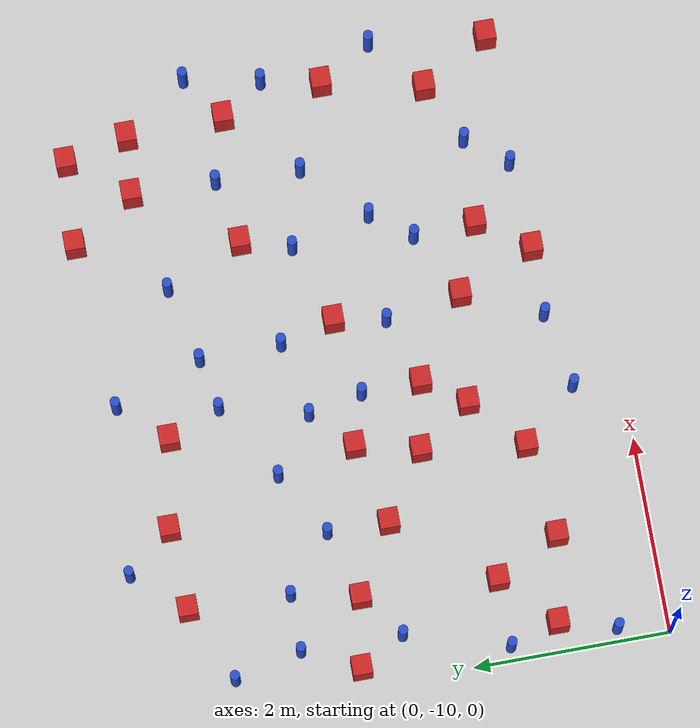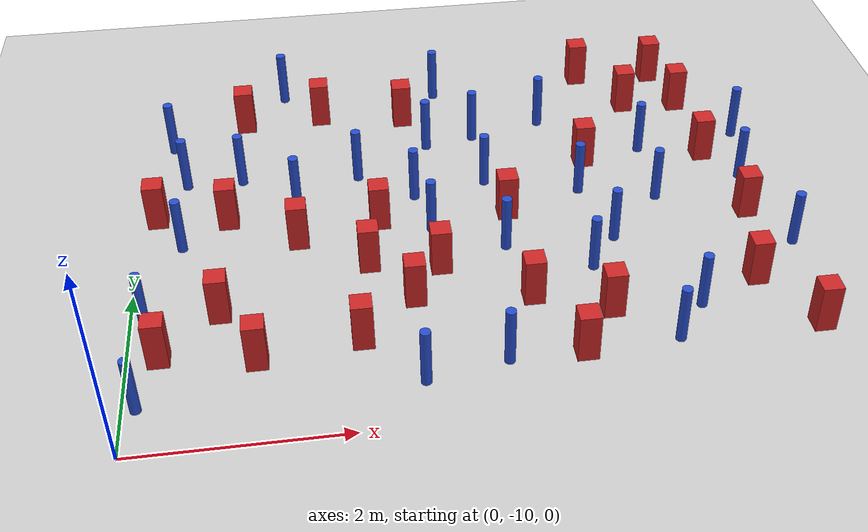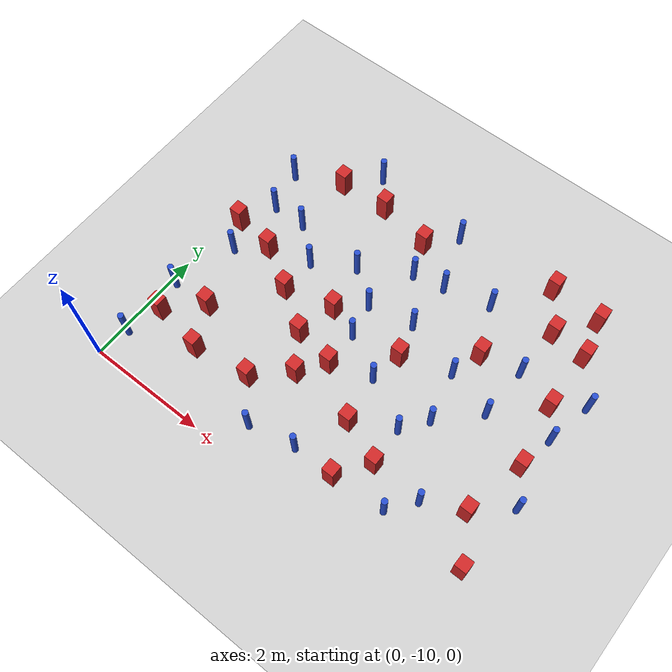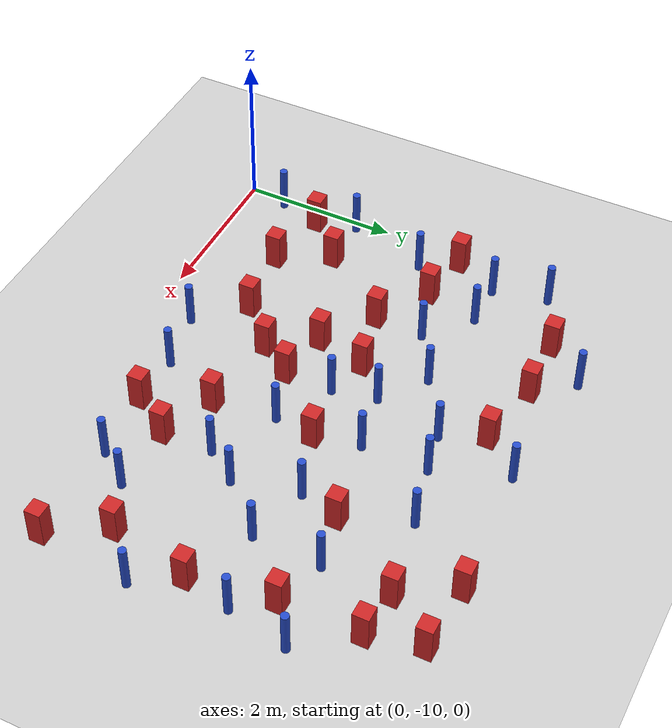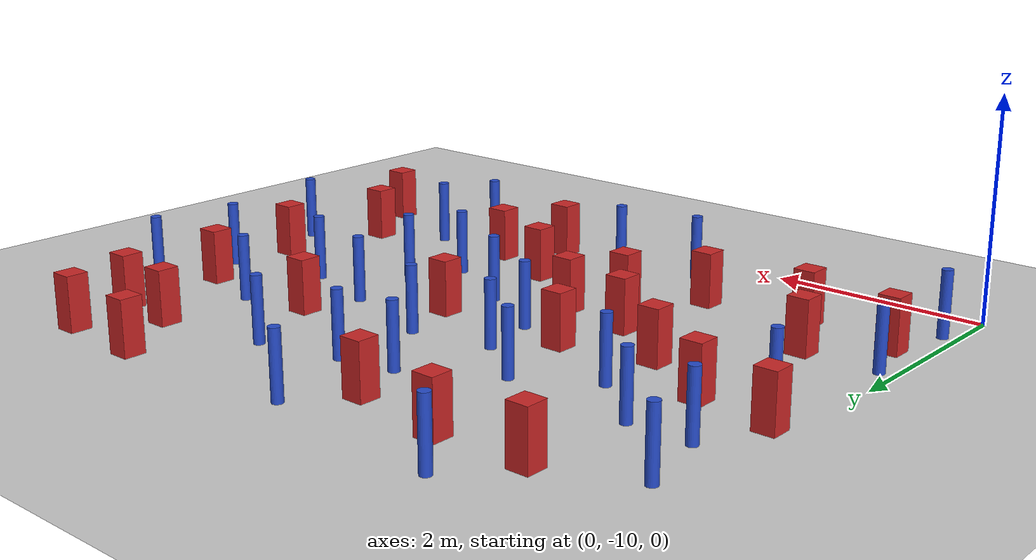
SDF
<sdf version="1.6">
 <world name="default">
  <model name="ground_plane">
   <static>1</static>
   <link name="link">
    <collision name="collision">
     <geometry><plane><normal>0 0 1</normal><size>100 100</size></plane></geometry>
     <surface><friction><ode><mu>100</mu><mu2>50</mu2></ode></friction></surface>
    </collision>
    <visual name="visual">
     <cast_shadows>0</cast_shadows>
     <geometry><plane><normal>0 0 1</normal><size>100 100</size></plane></geometry>
     <material>
      <ambient>1.0 1.0 1.0 1.0</ambient>
      <diffuse>0.8 0.8 0.8 1.0</diffuse>
      <specular>0.01 0.01 0.01 1.000000</specular>
     </material>
    </visual>
   </link>
  </model>
  <model name="pole_obstacle6">
   <static>true</static>
   <pose>5.271577572 -7.18126744558 7.38925637345e-09 -8.47170692796e-08 1.24976764786e-08 -1.74513093032e-07</pose>
   <link name="link">
    <pose>0 0 0.3 0 -0 0</pose>
    <inertial>
     <mass>1</mass>
     <inertia><ixx>0.145833</ixx><ixy>0</ixy><ixz>0</ixz><iyy>0.145833</iyy><iyz>0</iyz><izz>0.125</izz></inertia>
    </inertial>
    <collision name="collision">
     <geometry><cylinder><radius>0.05</radius><length>.6</length></cylinder></geometry>
    </collision>
    <visual name="visual">
     <geometry><cylinder><radius>0.05</radius><length>.6</length></cylinder></geometry>
     <material>
      <script><name>Gazebo/Blue</name><uri>file://media/materials/scripts/gazebo.material</uri></script>
     </material>
    </visual>
   </link>
  </model>
  <model name="pole_obstacle7">
   <static>true</static>
   <pose>5.28432317907 -8.86306961432 7.38925637345e-09 -8.471706928e-08 1.24976765081e-08 -1.74513093015e-07</pose>
   <link name="link">
    <pose>0 0 0.3 0 -0 0</pose>
    <inertial>
     <mass>1</mass>
     <inertia><ixx>0.145833</ixx><ixy>0</ixy><ixz>0</ixz><iyy>0.145833</iyy><iyz>0</iyz><izz>0.125</izz></inertia>
    </inertial>
    <collision name="collision">
     <geometry><cylinder><radius>0.05</radius><length>.6</length></cylinder></geometry>
    </collision>
    <visual name="visual">
     <geometry><cylinder><radius>0.05</radius><length>.6</length></cylinder></geometry>
     <material>
      <script><name>Gazebo/Blue</name><uri>file://media/materials/scripts/gazebo.material</uri></script>
     </material>
    </visual>
   </link>
  </model>
  <model name="pole_obstacle8">
   <static>true</static>
   <pose>3.60438439242 -7.76545788846 7.38925637345e-09 -8.47170692798e-08 1.24976765033e-08 -1.74513093019e-07</pose>
   <link name="link">
    <pose>0 0 0.3 0 -0 0</pose>
    <inertial>
     <mass>1</mass>
     <inertia><ixx>0.145833</ixx><ixy>0</ixy><ixz>0</ixz><iyy>0.145833</iyy><iyz>0</iyz><izz>0.125</izz></inertia>
    </inertial>
    <collision name="collision">
     <geometry><cylinder><radius>0.05</radius><length>.6</length></cylinder></geometry>
    </collision>
    <visual name="visual">
     <geometry><cylinder><radius>0.05</radius><length>.6</length></cylinder></geometry>
     <material>
      <script><name>Gazebo/Blue</name><uri>file://media/materials/scripts/gazebo.material</uri></script>
     </material>
    </visual>
   </link>
  </model>
  <model name="pole_obstacle11">
   <static>true</static>
   <pose>5.30130845704 -6.31877070383 7.38925637345e-09 -8.47170692796e-08 1.24976764786e-08 -1.74513093032e-07</pose>
   <link name="link">
    <pose>0 0 0.3 0 -0 0</pose>
    <inertial>
     <mass>1</mass>
     <inertia><ixx>0.145833</ixx><ixy>0</ixy><ixz>0</ixz><iyy>0.145833</iyy><iyz>0</iyz><izz>0.125</izz></inertia>
    </inertial>
    <collision name="collision">
     <geometry><cylinder><radius>0.05</radius><length>.6</length></cylinder></geometry>
    </collision>
    <visual name="visual">
     <geometry><cylinder><radius>0.05</radius><length>.6</length></cylinder></geometry>
     <material>
      <script><name>Gazebo/Blue</name><uri>file://media/materials/scripts/gazebo.material</uri></script>
     </material>
    </visual>
   </link>
  </model>
  <model name="square_post_obstacle25">
   <static>true</static>
   <pose>6.12115237514 -7.54366766233 1.91545236811e-07 -7.35059704564e-06 1.12565212e-07 2.39332434364e-05</pose>
   <link name="link">
    <pose>0 0 0.25 0 -0 0</pose>
    <inertial>
     <mass>100</mass>
     <inertia>
      <ixx>0.166667</ixx>
      <ixy>0</ixy>
      <ixz>0</ixz>
      <iyy>0.166667</iyy>
      <iyz>0</iyz>
      <izz>0.166667</izz>
     </inertia>
    </inertial>
    <collision name="collision"><geometry><box><size>.2 .2 .5</size></box></geometry></collision>
    <visual name="visual">
     <geometry><box><size>.2 .2 .5</size></box></geometry>
     <material>
      <script><name>Gazebo/Red</name><uri>file://media/materials/scripts/gazebo.material</uri></script>
     </material>
    </visual>
   </link>
  </model>
  <model name="square_post_obstacle27">
   <static>true</static>
   <pose>3.73613337438 -8.54263204366 1.91545236811e-07 -7.35059704564e-06 1.12565212e-07 2.39332434364e-05</pose>
   <link name="link">
    <pose>0 0 0.25 0 -0 0</pose>
    <inertial>
     <mass>100</mass>
     <inertia>
      <ixx>0.166667</ixx>
      <ixy>0</ixy>
      <ixz>0</ixz>
      <iyy>0.166667</iyy>
      <iyz>0</iyz>
      <izz>0.166667</izz>
     </inertia>
    </inertial>
    <collision name="collision"><geometry><box><size>.2 .2 .5</size></box></geometry></collision>
    <visual name="visual">
     <geometry><box><size>.2 .2 .5</size></box></geometry>
     <material>
      <script><name>Gazebo/Red</name><uri>file://media/materials/scripts/gazebo.material</uri></script>
     </material>
    </visual>
   </link>
  </model>
  <model name="pole_obstacle23">
   <static>true</static>
   <pose>4.396055112 -8.18923152919 7.38925637345e-09 -8.471706928e-08 1.24976765081e-08 -1.74513093015e-07</pose>
   <link name="link">
    <pose>0 0 0.3 0 -0 0</pose>
    <inertial>
     <mass>1</mass>
     <inertia><ixx>0.145833</ixx><ixy>0</ixy><ixz>0</ixz><iyy>0.145833</iyy><iyz>0</iyz><izz>0.125</izz></inertia>
    </inertial>
    <collision name="collision">
     <geometry><cylinder><radius>0.05</radius><length>.6</length></cylinder></geometry>
    </collision>
    <visual name="visual">
     <geometry><cylinder><radius>0.05</radius><length>.6</length></cylinder></geometry>
     <material>
      <script><name>Gazebo/Blue</name><uri>file://media/materials/scripts/gazebo.material</uri></script>
     </material>
    </visual>
   </link>
  </model>
  <model name="pole_obstacle30">
   <static>true</static>
   <pose>0.287188751071 -5.63459459776 7.38925637345e-09 -8.47170692799e-08 1.24976765101e-08 -1.74513093014e-07</pose>
   <link name="link">
    <pose>0 0 0.3 0 -0 0</pose>
    <inertial>
     <mass>1</mass>
     <inertia><ixx>0.145833</ixx><ixy>0</ixy><ixz>0</ixz><iyy>0.145833</iyy><iyz>0</iyz><izz>0.125</izz></inertia>
    </inertial>
    <collision name="collision">
     <geometry><cylinder><radius>0.05</radius><length>.6</length></cylinder></geometry>
    </collision>
    <visual name="visual">
     <geometry><cylinder><radius>0.05</radius><length>.6</length></cylinder></geometry>
     <material>
      <script><name>Gazebo/Blue</name><uri>file://media/materials/scripts/gazebo.material</uri></script>
     </material>
    </visual>
   </link>
  </model>
  <model name="square_post_obstacle39">
   <static>true</static>
   <pose>3.69837283234 -7.23739960545 1.91545236811e-07 -7.35059704564e-06 1.12565212e-07 2.39332434364e-05</pose>
   <link name="link">
    <pose>0 0 0.25 0 -0 0</pose>
    <inertial>
     <mass>100</mass>
     <inertia>
      <ixx>0.166667</ixx>
      <ixy>0</ixy>
      <ixz>0</ixz>
      <iyy>0.166667</iyy>
      <iyz>0</iyz>
      <izz>0.166667</izz>
     </inertia>
    </inertial>
    <collision name="collision"><geometry><box><size>.2 .2 .5</size></box></geometry></collision>
    <visual name="visual">
     <geometry><box><size>.2 .2 .5</size></box></geometry>
     <material>
      <script><name>Gazebo/Red</name><uri>file://media/materials/scripts/gazebo.material</uri></script>
     </material>
    </visual>
   </link>
  </model>
  <model name="pole_obstacle39">
   <static>true</static>
   <pose>2.23566454132 -6.41571972906 7.38925637345e-09 -8.47170692798e-08 1.24976765033e-08 -1.74513093019e-07</pose>
   <link name="link">
    <pose>0 0 0.3 0 -0 0</pose>
    <inertial>
     <mass>1</mass>
     <inertia><ixx>0.145833</ixx><ixy>0</ixy><ixz>0</ixz><iyy>0.145833</iyy><iyz>0</iyz><izz>0.125</izz></inertia>
    </inertial>
    <collision name="collision">
     <geometry><cylinder><radius>0.05</radius><length>.6</length></cylinder></geometry>
    </collision>
    <visual name="visual">
     <geometry><cylinder><radius>0.05</radius><length>.6</length></cylinder></geometry>
     <material>
      <script><name>Gazebo/Blue</name><uri>file://media/materials/scripts/gazebo.material</uri></script>
     </material>
    </visual>
   </link>
  </model>
  <model name="square_post_obstacle40">
   <static>true</static>
   <pose>2.92845621348 -7.99099656121 1.91545236811e-07 -7.35059704564e-06 1.12565212e-07 2.39332434364e-05</pose>
   <link name="link">
    <pose>0 0 0.25 0 -0 0</pose>
    <inertial>
     <mass>100</mass>
     <inertia>
      <ixx>0.166667</ixx>
      <ixy>0</ixy>
      <ixz>0</ixz>
      <iyy>0.166667</iyy>
      <iyz>0</iyz>
      <izz>0.166667</izz>
     </inertia>
    </inertial>
    <collision name="collision"><geometry><box><size>.2 .2 .5</size></box></geometry></collision>
    <visual name="visual">
     <geometry><box><size>.2 .2 .5</size></box></geometry>
     <material>
      <script><name>Gazebo/Red</name><uri>file://media/materials/scripts/gazebo.material</uri></script>
     </material>
    </visual>
   </link>
  </model>
  <model name="pole_obstacle45">
   <static>true</static>
   <pose>1.0246326192 -6.3255468226 7.38925637345e-09 -8.47170692799e-08 1.24976765021e-08 -1.74513093019e-07</pose>
   <link name="link">
    <pose>0 0 0.3 0 -0 0</pose>
    <inertial>
     <mass>1</mass>
     <inertia><ixx>0.145833</ixx><ixy>0</ixy><ixz>0</ixz><iyy>0.145833</iyy><iyz>0</iyz><izz>0.125</izz></inertia>
    </inertial>
    <collision name="collision">
     <geometry><cylinder><radius>0.05</radius><length>.6</length></cylinder></geometry>
    </collision>
    <visual name="visual">
     <geometry><cylinder><radius>0.05</radius><length>.6</length></cylinder></geometry>
     <material>
      <script><name>Gazebo/Blue</name><uri>file://media/materials/scripts/gazebo.material</uri></script>
     </material>
    </visual>
   </link>
  </model>
  <model name="square_post_obstacle49">
   <static>true</static>
   <pose>0.822235877678 -8.39169354705 1.91545236811e-07 -7.35059704564e-06 1.12565212e-07 2.39332434364e-05</pose>
   <link name="link">
    <pose>0 0 0.25 0 -0 0</pose>
    <inertial>
     <mass>100</mass>
     <inertia>
      <ixx>0.166667</ixx>
      <ixy>0</ixy>
      <ixz>0</ixz>
      <iyy>0.166667</iyy>
      <iyz>0</iyz>
      <izz>0.166667</izz>
     </inertia>
    </inertial>
    <collision name="collision"><geometry><box><size>.2 .2 .5</size></box></geometry></collision>
    <visual name="visual">
     <geometry><box><size>.2 .2 .5</size></box></geometry>
     <material>
      <script><name>Gazebo/Red</name><uri>file://media/materials/scripts/gazebo.material</uri></script>
     </material>
    </visual>
   </link>
  </model>
  <model name="square_post_obstacle68">
   <static>true</static>
   <pose>5.91834453079 -5.51161817568 1.91545236811e-07 -7.35059704564e-06 1.12565212e-07 2.39332434364e-05</pose>
   <link name="link">
    <pose>0 0 0.25 0 -0 0</pose>
    <inertial>
     <mass>100</mass>
     <inertia>
      <ixx>0.166667</ixx>
      <ixy>0</ixy>
      <ixz>0</ixz>
      <iyy>0.166667</iyy>
      <iyz>0</iyz>
      <izz>0.166667</izz>
     </inertia>
    </inertial>
    <collision name="collision"><geometry><box><size>.2 .2 .5</size></box></geometry></collision>
    <visual name="visual">
     <geometry><box><size>.2 .2 .5</size></box></geometry>
     <material>
      <script><name>Gazebo/Red</name><uri>file://media/materials/scripts/gazebo.material</uri></script>
     </material>
    </visual>
   </link>
  </model>
  <model name="square_post_obstacle71">
   <static>true</static>
   <pose>4.07482808554 -9.33600447289 1.91545236811e-07 -7.35059704564e-06 1.12565212e-07 2.39332434364e-05</pose>
   <link name="link">
    <pose>0 0 0.25 0 -0 0</pose>
    <inertial>
     <mass>100</mass>
     <inertia>
      <ixx>0.166667</ixx>
      <ixy>0</ixy>
      <ixz>0</ixz>
      <iyy>0.166667</iyy>
      <iyz>0</iyz>
      <izz>0.166667</izz>
     </inertia>
    </inertial>
    <collision name="collision"><geometry><box><size>.2 .2 .5</size></box></geometry></collision>
    <visual name="visual">
     <geometry><box><size>.2 .2 .5</size></box></geometry>
     <material>
      <script><name>Gazebo/Red</name><uri>file://media/materials/scripts/gazebo.material</uri></script>
     </material>
    </visual>
   </link>
  </model>
  <model name="square_post_obstacle72">
   <static>true</static>
   <pose>1.57845472232 -7.42031541721 1.91545236811e-07 -7.35059704564e-06 1.12565212e-07 2.39332434364e-05</pose>
   <link name="link">
    <pose>0 0 0.25 0 -0 0</pose>
    <inertial>
     <mass>100</mass>
     <inertia>
      <ixx>0.166667</ixx>
      <ixy>0</ixy>
      <ixz>0</ixz>
      <iyy>0.166667</iyy>
      <iyz>0</iyz>
      <izz>0.166667</izz>
     </inertia>
    </inertial>
    <collision name="collision"><geometry><box><size>.2 .2 .5</size></box></geometry></collision>
    <visual name="visual">
     <geometry><box><size>.2 .2 .5</size></box></geometry>
     <material>
      <script><name>Gazebo/Red</name><uri>file://media/materials/scripts/gazebo.material</uri></script>
     </material>
    </visual>
   </link>
  </model>
  <model name="pole_obstacle72">
   <static>true</static>
   <pose>0.451966054283 -6.32742800341 7.38925637345e-09 -8.471706928e-08 1.24976765095e-08 -1.74513093014e-07</pose>
   <link name="link">
    <pose>0 0 0.3 0 -0 0</pose>
    <inertial>
     <mass>1</mass>
     <inertia><ixx>0.145833</ixx><ixy>0</ixy><ixz>0</ixz><iyy>0.145833</iyy><iyz>0</iyz><izz>0.125</izz></inertia>
    </inertial>
    <collision name="collision">
     <geometry><cylinder><radius>0.05</radius><length>.6</length></cylinder></geometry>
    </collision>
    <visual name="visual">
     <geometry><cylinder><radius>0.05</radius><length>.6</length></cylinder></geometry>
     <material>
      <script><name>Gazebo/Blue</name><uri>file://media/materials/scripts/gazebo.material</uri></script>
     </material>
    </visual>
   </link>
  </model>
  <model name="pole_obstacle78">
   <static>true</static>
   <pose>0.123281233815 -9.48123394216 7.38925637345e-09 -8.47170692796e-08 1.24976764716e-08 -1.74513093036e-07</pose>
   <link name="link">
    <pose>0 0 0.3 0 -0 0</pose>
    <inertial>
     <mass>1</mass>
     <inertia><ixx>0.145833</ixx><ixy>0</ixy><ixz>0</ixz><iyy>0.145833</iyy><iyz>0</iyz><izz>0.125</izz></inertia>
    </inertial>
    <collision name="collision">
     <geometry><cylinder><radius>0.05</radius><length>.6</length></cylinder></geometry>
    </collision>
    <visual name="visual">
     <geometry><cylinder><radius>0.05</radius><length>.6</length></cylinder></geometry>
     <material>
      <script><name>Gazebo/Blue</name><uri>file://media/materials/scripts/gazebo.material</uri></script>
     </material>
    </visual>
   </link>
  </model>
  <model name="square_post_obstacle77">
   <static>true</static>
   <pose>1.06914632745 -5.2887899523 1.91545236811e-07 -7.35059704564e-06 1.12565212e-07 2.39332434364e-05</pose>
   <link name="link">
    <pose>0 0 0.25 0 -0 0</pose>
    <inertial>
     <mass>100</mass>
     <inertia>
      <ixx>0.166667</ixx>
      <ixy>0</ixy>
      <ixz>0</ixz>
      <iyy>0.166667</iyy>
      <iyz>0</iyz>
      <izz>0.166667</izz>
     </inertia>
    </inertial>
    <collision name="collision"><geometry><box><size>.2 .2 .5</size></box></geometry></collision>
    <visual name="visual">
     <geometry><box><size>.2 .2 .5</size></box></geometry>
     <material>
      <script><name>Gazebo/Red</name><uri>file://media/materials/scripts/gazebo.material</uri></script>
     </material>
    </visual>
   </link>
  </model>
  <model name="pole_obstacle87">
   <static>true</static>
   <pose>4.30091227438 -5.65479404356 7.38925637345e-09 -8.47170692796e-08 1.24976764786e-08 -1.74513093032e-07</pose>
   <link name="link">
    <pose>0 0 0.3 0 -0 0</pose>
    <inertial>
     <mass>1</mass>
     <inertia><ixx>0.145833</ixx><ixy>0</ixy><ixz>0</ixz><iyy>0.145833</iyy><iyz>0</iyz><izz>0.125</izz></inertia>
    </inertial>
    <collision name="collision">
     <geometry><cylinder><radius>0.05</radius><length>.6</length></cylinder></geometry>
    </collision>
    <visual name="visual">
     <geometry><cylinder><radius>0.05</radius><length>.6</length></cylinder></geometry>
     <material>
      <script><name>Gazebo/Blue</name><uri>file://media/materials/scripts/gazebo.material</uri></script>
     </material>
    </visual>
   </link>
  </model>
  <model name="pole_obstacle91">
   <static>true</static>
   <pose>4.49982077627 -6.96311175819 7.38925637345e-09 -8.47170692796e-08 1.24976764786e-08 -1.74513093032e-07</pose>
   <link name="link">
    <pose>0 0 0.3 0 -0 0</pose>
    <inertial>
     <mass>1</mass>
     <inertia><ixx>0.145833</ixx><ixy>0</ixy><ixz>0</ixz><iyy>0.145833</iyy><iyz>0</iyz><izz>0.125</izz></inertia>
    </inertial>
    <collision name="collision">
     <geometry><cylinder><radius>0.05</radius><length>.6</length></cylinder></geometry>
    </collision>
    <visual name="visual">
     <geometry><cylinder><radius>0.05</radius><length>.6</length></cylinder></geometry>
     <material>
      <script><name>Gazebo/Blue</name><uri>file://media/materials/scripts/gazebo.material</uri></script>
     </material>
    </visual>
   </link>
  </model>
  <model name="pole_obstacle92">
   <static>true</static>
   <pose>3.01318450511 -5.94761780167 7.38925637345e-09 -8.47170692798e-08 1.24976765033e-08 -1.74513093019e-07</pose>
   <link name="link">
    <pose>0 0 0.3 0 -0 0</pose>
    <inertial>
     <mass>1</mass>
     <inertia><ixx>0.145833</ixx><ixy>0</ixy><ixz>0</ixz><iyy>0.145833</iyy><iyz>0</iyz><izz>0.125</izz></inertia>
    </inertial>
    <collision name="collision">
     <geometry><cylinder><radius>0.05</radius><length>.6</length></cylinder></geometry>
    </collision>
    <visual name="visual">
     <geometry><cylinder><radius>0.05</radius><length>.6</length></cylinder></geometry>
     <material>
      <script><name>Gazebo/Blue</name><uri>file://media/materials/scripts/gazebo.material</uri></script>
     </material>
    </visual>
   </link>
  </model>
  <model name="pole_obstacle94">
   <static>true</static>
   <pose>0.435240840158 -7.35605078617 7.38925637345e-09 -8.471706928e-08 1.24976765079e-08 -1.74513093015e-07</pose>
   <link name="link">
    <pose>0 0 0.3 0 -0 0</pose>
    <inertial>
     <mass>1</mass>
     <inertia><ixx>0.145833</ixx><ixy>0</ixy><ixz>0</ixz><iyy>0.145833</iyy><iyz>0</iyz><izz>0.125</izz></inertia>
    </inertial>
    <collision name="collision">
     <geometry><cylinder><radius>0.05</radius><length>.6</length></cylinder></geometry>
    </collision>
    <visual name="visual">
     <geometry><cylinder><radius>0.05</radius><length>.6</length></cylinder></geometry>
     <material>
      <script><name>Gazebo/Blue</name><uri>file://media/materials/scripts/gazebo.material</uri></script>
     </material>
    </visual>
   </link>
  </model>
  <model name="square_post_obstacle84">
   <static>true</static>
   <pose>4.91511144612 -4.80730637803 1.91545236811e-07 -7.35059704564e-06 1.12565212e-07 2.39332434364e-05</pose>
   <link name="link">
    <pose>0 0 0.25 0 -0 0</pose>
    <inertial>
     <mass>100</mass>
     <inertia>
      <ixx>0.166667</ixx>
      <ixy>0</ixy>
      <ixz>0</ixz>
      <iyy>0.166667</iyy>
      <iyz>0</iyz>
      <izz>0.166667</izz>
     </inertia>
    </inertial>
    <collision name="collision"><geometry><box><size>.2 .2 .5</size></box></geometry></collision>
    <visual name="visual">
     <geometry><box><size>.2 .2 .5</size></box></geometry>
     <material>
      <script><name>Gazebo/Red</name><uri>file://media/materials/scripts/gazebo.material</uri></script>
     </material>
    </visual>
   </link>
  </model>
  <model name="pole_obstacle97">
   <static>true</static>
   <pose>1.50216667078 -4.77687535162 7.38925637345e-09 -8.47170692799e-08 1.24976765033e-08 -1.74513093018e-07</pose>
   <link name="link">
    <pose>0 0 0.3 0 -0 0</pose>
    <inertial>
     <mass>1</mass>
     <inertia><ixx>0.145833</ixx><ixy>0</ixy><ixz>0</ixz><iyy>0.145833</iyy><iyz>0</iyz><izz>0.125</izz></inertia>
    </inertial>
    <collision name="collision">
     <geometry><cylinder><radius>0.05</radius><length>.6</length></cylinder></geometry>
    </collision>
    <visual name="visual">
     <geometry><cylinder><radius>0.05</radius><length>.6</length></cylinder></geometry>
     <material>
      <script><name>Gazebo/Blue</name><uri>file://media/materials/scripts/gazebo.material</uri></script>
     </material>
    </visual>
   </link>
  </model>
  <model name="square_post_obstacle95">
   <static>true</static>
   <pose>2.40074667809 -7.22040312018 1.91545236811e-07 -7.35059704564e-06 1.12565212e-07 2.39332434364e-05</pose>
   <link name="link">
    <pose>0 0 0.25 0 -0 0</pose>
    <inertial>
     <mass>100</mass>
     <inertia>
      <ixx>0.166667</ixx>
      <ixy>0</ixy>
      <ixz>0</ixz>
      <iyy>0.166667</iyy>
      <iyz>0</iyz>
      <izz>0.166667</izz>
     </inertia>
    </inertial>
    <collision name="collision"><geometry><box><size>.2 .2 .5</size></box></geometry></collision>
    <visual name="visual">
     <geometry><box><size>.2 .2 .5</size></box></geometry>
     <material>
      <script><name>Gazebo/Red</name><uri>file://media/materials/scripts/gazebo.material</uri></script>
     </material>
    </visual>
   </link>
  </model>
  <model name="pole_obstacle111">
   <static>true</static>
   <pose>0.131074087898 -8.40184118148 7.38925637345e-09 -8.47170692796e-08 1.2497676475e-08 -1.74513093035e-07</pose>
   <link name="link">
    <pose>0 0 0.3 0 -0 0</pose>
    <inertial>
     <mass>1</mass>
     <inertia><ixx>0.145833</ixx><ixy>0</ixy><ixz>0</ixz><iyy>0.145833</iyy><iyz>0</iyz><izz>0.125</izz></inertia>
    </inertial>
    <collision name="collision">
     <geometry><cylinder><radius>0.05</radius><length>.6</length></cylinder></geometry>
    </collision>
    <visual name="visual">
     <geometry><cylinder><radius>0.05</radius><length>.6</length></cylinder></geometry>
     <material>
      <script><name>Gazebo/Blue</name><uri>file://media/materials/scripts/gazebo.material</uri></script>
     </material>
    </visual>
   </link>
  </model>
  <model name="square_post_obstacle101">
   <static>true</static>
   <pose>1.15717140621 -9.05138047902 1.91545236811e-07 -7.35059704564e-06 1.12565212e-07 2.39332434364e-05</pose>
   <link name="link">
    <pose>0 0 0.25 0 -0 0</pose>
    <inertial>
     <mass>100</mass>
     <inertia>
      <ixx>0.166667</ixx>
      <ixy>0</ixy>
      <ixz>0</ixz>
      <iyy>0.166667</iyy>
      <iyz>0</iyz>
      <izz>0.166667</izz>
     </inertia>
    </inertial>
    <collision name="collision"><geometry><box><size>.2 .2 .5</size></box></geometry></collision>
    <visual name="visual">
     <geometry><box><size>.2 .2 .5</size></box></geometry>
     <material>
      <script><name>Gazebo/Red</name><uri>file://media/materials/scripts/gazebo.material</uri></script>
     </material>
    </visual>
   </link>
  </model>
  <model name="pole_obstacle118">
   <static>true</static>
   <pose>3.20369925575 -4.93555956202 7.38925637345e-09 -8.47170692798e-08 1.24976765033e-08 -1.74513093019e-07</pose>
   <link name="link">
    <pose>0 0 0.3 0 -0 0</pose>
    <inertial>
     <mass>1</mass>
     <inertia><ixx>0.145833</ixx><ixy>0</ixy><ixz>0</ixz><iyy>0.145833</iyy><iyz>0</iyz><izz>0.125</izz></inertia>
    </inertial>
    <collision name="collision">
     <geometry><cylinder><radius>0.05</radius><length>.6</length></cylinder></geometry>
    </collision>
    <visual name="visual">
     <geometry><cylinder><radius>0.05</radius><length>.6</length></cylinder></geometry>
     <material>
      <script><name>Gazebo/Blue</name><uri>file://media/materials/scripts/gazebo.material</uri></script>
     </material>
    </visual>
   </link>
  </model>
  <model name="square_post_obstacle109">
   <static>true</static>
   <pose>1.8976443352 -5.24779686258 1.91545236811e-07 -7.35059704564e-06 1.12565212e-07 2.39332434364e-05</pose>
   <link name="link">
    <pose>0 0 0.25 0 -0 0</pose>
    <inertial>
     <mass>100</mass>
     <inertia>
      <ixx>0.166667</ixx>
      <ixy>0</ixy>
      <ixz>0</ixz>
      <iyy>0.166667</iyy>
      <iyz>0</iyz>
      <izz>0.166667</izz>
     </inertia>
    </inertial>
    <collision name="collision"><geometry><box><size>.2 .2 .5</size></box></geometry></collision>
    <visual name="visual">
     <geometry><box><size>.2 .2 .5</size></box></geometry>
     <material>
      <script><name>Gazebo/Red</name><uri>file://media/materials/scripts/gazebo.material</uri></script>
     </material>
    </visual>
   </link>
  </model>
  <model name="square_post_obstacle112">
   <static>true</static>
   <pose>0.179964821833 -6.89215980699 1.91545236811e-07 -7.35059704564e-06 1.12565212e-07 2.39332434364e-05</pose>
   <link name="link">
    <pose>0 0 0.25 0 -0 0</pose>
    <inertial>
     <mass>100</mass>
     <inertia>
      <ixx>0.166667</ixx>
      <ixy>0</ixy>
      <ixz>0</ixz>
      <iyy>0.166667</iyy>
      <iyz>0</iyz>
      <izz>0.166667</izz>
     </inertia>
    </inertial>
    <collision name="collision"><geometry><box><size>.2 .2 .5</size></box></geometry></collision>
    <visual name="visual">
     <geometry><box><size>.2 .2 .5</size></box></geometry>
     <material>
      <script><name>Gazebo/Red</name><uri>file://media/materials/scripts/gazebo.material</uri></script>
     </material>
    </visual>
   </link>
  </model>
  <model name="square_post_obstacle113">
   <static>true</static>
   <pose>5.76745286484 -4.86418785208 1.91545236811e-07 -7.35059704564e-06 1.12565212e-07 2.39332434364e-05</pose>
   <link name="link">
    <pose>0 0 0.25 0 -0 0</pose>
    <inertial>
     <mass>100</mass>
     <inertia>
      <ixx>0.166667</ixx>
      <ixy>0</ixy>
      <ixz>0</ixz>
      <iyy>0.166667</iyy>
      <iyz>0</iyz>
      <izz>0.166667</izz>
     </inertia>
    </inertial>
    <collision name="collision"><geometry><box><size>.2 .2 .5</size></box></geometry></collision>
    <visual name="visual">
     <geometry><box><size>.2 .2 .5</size></box></geometry>
     <material>
      <script><name>Gazebo/Red</name><uri>file://media/materials/scripts/gazebo.material</uri></script>
     </material>
    </visual>
   </link>
  </model>
  <model name="pole_obstacle130">
   <static>true</static>
   <pose>2.61655782951 -9.4908694843 7.38925637345e-09 -8.47170692793e-08 1.24976764408e-08 -1.74513093041e-07</pose>
   <link name="link">
    <pose>0 0 0.3 0 -0 0</pose>
    <inertial>
     <mass>1</mass>
     <inertia><ixx>0.145833</ixx><ixy>0</ixy><ixz>0</ixz><iyy>0.145833</iyy><iyz>0</iyz><izz>0.125</izz></inertia>
    </inertial>
    <collision name="collision">
     <geometry><cylinder><radius>0.05</radius><length>.6</length></cylinder></geometry>
    </collision>
    <visual name="visual">
     <geometry><cylinder><radius>0.05</radius><length>.6</length></cylinder></geometry>
     <material>
      <script><name>Gazebo/Blue</name><uri>file://media/materials/scripts/gazebo.material</uri></script>
     </material>
    </visual>
   </link>
  </model>
  <model name="pole_obstacle131">
   <static>true</static>
   <pose>3.3800033608 -9.33851180361 7.38925637345e-09 -8.47170692793e-08 1.24976764408e-08 -1.74513093041e-07</pose>
   <link name="link">
    <pose>0 0 0.3 0 -0 0</pose>
    <inertial>
     <mass>1</mass>
     <inertia><ixx>0.145833</ixx><ixy>0</ixy><ixz>0</ixz><iyy>0.145833</iyy><iyz>0</iyz><izz>0.125</izz></inertia>
    </inertial>
    <collision name="collision">
     <geometry><cylinder><radius>0.05</radius><length>.6</length></cylinder></geometry>
    </collision>
    <visual name="visual">
     <geometry><cylinder><radius>0.05</radius><length>.6</length></cylinder></geometry>
     <material>
      <script><name>Gazebo/Blue</name><uri>file://media/materials/scripts/gazebo.material</uri></script>
     </material>
    </visual>
   </link>
  </model>
  <model name="pole_obstacle133">
   <static>true</static>
   <pose>3.54568206373 -6.67849756205 7.38925637345e-09 -8.47170692798e-08 1.24976765033e-08 -1.74513093019e-07</pose>
   <link name="link">
    <pose>0 0 0.3 0 -0 0</pose>
    <inertial>
     <mass>1</mass>
     <inertia><ixx>0.145833</ixx><ixy>0</ixy><ixz>0</ixz><iyy>0.145833</iyy><iyz>0</iyz><izz>0.125</izz></inertia>
    </inertial>
    <collision name="collision">
     <geometry><cylinder><radius>0.05</radius><length>.6</length></cylinder></geometry>
    </collision>
    <visual name="visual">
     <geometry><cylinder><radius>0.05</radius><length>.6</length></cylinder></geometry>
     <material>
      <script><name>Gazebo/Blue</name><uri>file://media/materials/scripts/gazebo.material</uri></script>
     </material>
    </visual>
   </link>
  </model>
  <model name="pole_obstacle136">
   <static>true</static>
   <pose>6.40222209789 -6.17708256358 7.38925637345e-09 -8.47170692796e-08 1.24976764786e-08 -1.74513093032e-07</pose>
   <link name="link">
    <pose>0 0 0.3 0 -0 0</pose>
    <inertial>
     <mass>1</mass>
     <inertia><ixx>0.145833</ixx><ixy>0</ixy><ixz>0</ixz><iyy>0.145833</iyy><iyz>0</iyz><izz>0.125</izz></inertia>
    </inertial>
    <collision name="collision">
     <geometry><cylinder><radius>0.05</radius><length>.6</length></cylinder></geometry>
    </collision>
    <visual name="visual">
     <geometry><cylinder><radius>0.05</radius><length>.6</length></cylinder></geometry>
     <material>
      <script><name>Gazebo/Blue</name><uri>file://media/materials/scripts/gazebo.material</uri></script>
     </material>
    </visual>
   </link>
  </model>
  <model name="square_post_obstacle122">
   <static>true</static>
   <pose>2.63477689932 -8.42086849032 1.91545236811e-07 -7.35059704564e-06 1.12565212e-07 2.39332434364e-05</pose>
   <link name="link">
    <pose>0 0 0.25 0 -0 0</pose>
    <inertial>
     <mass>100</mass>
     <inertia>
      <ixx>0.166667</ixx>
      <ixy>0</ixy>
      <ixz>0</ixz>
      <iyy>0.166667</iyy>
      <iyz>0</iyz>
      <izz>0.166667</izz>
     </inertia>
    </inertial>
    <collision name="collision"><geometry><box><size>.2 .2 .5</size></box></geometry></collision>
    <visual name="visual">
     <geometry><box><size>.2 .2 .5</size></box></geometry>
     <material>
      <script><name>Gazebo/Red</name><uri>file://media/materials/scripts/gazebo.material</uri></script>
     </material>
    </visual>
   </link>
  </model>
  <model name="pole_obstacle139">
   <static>true</static>
   <pose>6.43826251274 -8.08978280221 7.38925637345e-09 -8.471706928e-08 1.24976765081e-08 -1.74513093015e-07</pose>
   <link name="link">
    <pose>0 0 0.3 0 -0 0</pose>
    <inertial>
     <mass>1</mass>
     <inertia><ixx>0.145833</ixx><ixy>0</ixy><ixz>0</ixz><iyy>0.145833</iyy><iyz>0</iyz><izz>0.125</izz></inertia>
    </inertial>
    <collision name="collision">
     <geometry><cylinder><radius>0.05</radius><length>.6</length></cylinder></geometry>
    </collision>
    <visual name="visual">
     <geometry><cylinder><radius>0.05</radius><length>.6</length></cylinder></geometry>
     <material>
      <script><name>Gazebo/Blue</name><uri>file://media/materials/scripts/gazebo.material</uri></script>
     </material>
    </visual>
   </link>
  </model>
  <model name="square_post_obstacle125">
   <static>true</static>
   <pose>4.65289203738 -6.45203757422 1.91545236811e-07 -7.35059704564e-06 1.12565212e-07 2.39332434364e-05</pose>
   <link name="link">
    <pose>0 0 0.25 0 -0 0</pose>
    <inertial>
     <mass>100</mass>
     <inertia>
      <ixx>0.166667</ixx>
      <ixy>0</ixy>
      <ixz>0</ixz>
      <iyy>0.166667</iyy>
      <iyz>0</iyz>
      <izz>0.166667</izz>
     </inertia>
    </inertial>
    <collision name="collision"><geometry><box><size>.2 .2 .5</size></box></geometry></collision>
    <visual name="visual">
     <geometry><box><size>.2 .2 .5</size></box></geometry>
     <material>
      <script><name>Gazebo/Red</name><uri>file://media/materials/scripts/gazebo.material</uri></script>
     </material>
    </visual>
   </link>
  </model>
  <model name="pole_obstacle141">
   <static>true</static>
   <pose>6.244720258 -6.94614753114 7.38925637345e-09 -8.47170692796e-08 1.24976764786e-08 -1.74513093032e-07</pose>
   <link name="link">
    <pose>0 0 0.3 0 -0 0</pose>
    <inertial>
     <mass>1</mass>
     <inertia><ixx>0.145833</ixx><ixy>0</ixy><ixz>0</ixz><iyy>0.145833</iyy><iyz>0</iyz><izz>0.125</izz></inertia>
    </inertial>
    <collision name="collision">
     <geometry><cylinder><radius>0.05</radius><length>.6</length></cylinder></geometry>
    </collision>
    <visual name="visual">
     <geometry><cylinder><radius>0.05</radius><length>.6</length></cylinder></geometry>
     <material>
      <script><name>Gazebo/Blue</name><uri>file://media/materials/scripts/gazebo.material</uri></script>
     </material>
    </visual>
   </link>
  </model>
  <model name="square_post_obstacle139">
   <static>true</static>
   <pose>0.29001390738 -8.90242390911 1.91545236811e-07 -7.35059704564e-06 1.12565212e-07 2.39332434364e-05</pose>
   <link name="link">
    <pose>0 0 0.25 0 -0 0</pose>
    <inertial>
     <mass>100</mass>
     <inertia>
      <ixx>0.166667</ixx>
      <ixy>0</ixy>
      <ixz>0</ixz>
      <iyy>0.166667</iyy>
      <iyz>0</iyz>
      <izz>0.166667</izz>
     </inertia>
    </inertial>
    <collision name="collision"><geometry><box><size>.2 .2 .5</size></box></geometry></collision>
    <visual name="visual">
     <geometry><box><size>.2 .2 .5</size></box></geometry>
     <material>
      <script><name>Gazebo/Red</name><uri>file://media/materials/scripts/gazebo.material</uri></script>
     </material>
    </visual>
   </link>
  </model>
  <model name="pole_obstacle151">
   <static>true</static>
   <pose>1.5810061034 -6.79824571694 7.38925637345e-09 -8.47170692799e-08 1.24976765033e-08 -1.74513093018e-07</pose>
   <link name="link">
    <pose>0 0 0.3 0 -0 0</pose>
    <inertial>
     <mass>1</mass>
     <inertia><ixx>0.145833</ixx><ixy>0</ixy><ixz>0</ixz><iyy>0.145833</iyy><iyz>0</iyz><izz>0.125</izz></inertia>
    </inertial>
    <collision name="collision">
     <geometry><cylinder><radius>0.05</radius><length>.6</length></cylinder></geometry>
    </collision>
    <visual name="visual">
     <geometry><cylinder><radius>0.05</radius><length>.6</length></cylinder></geometry>
     <material>
      <script><name>Gazebo/Blue</name><uri>file://media/materials/scripts/gazebo.material</uri></script>
     </material>
    </visual>
   </link>
  </model>
  <model name="square_post_obstacle145">
   <static>true</static>
   <pose>5.89973481465 -8.56698881378 1.91545236811e-07 -7.35059704564e-06 1.12565212e-07 2.39332434364e-05</pose>
   <link name="link">
    <pose>0 0 0.25 0 -0 0</pose>
    <inertial>
     <mass>100</mass>
     <inertia>
      <ixx>0.166667</ixx>
      <ixy>0</ixy>
      <ixz>0</ixz>
      <iyy>0.166667</iyy>
      <iyz>0</iyz>
      <izz>0.166667</izz>
     </inertia>
    </inertial>
    <collision name="collision"><geometry><box><size>.2 .2 .5</size></box></geometry></collision>
    <visual name="visual">
     <geometry><box><size>.2 .2 .5</size></box></geometry>
     <material>
      <script><name>Gazebo/Red</name><uri>file://media/materials/scripts/gazebo.material</uri></script>
     </material>
    </visual>
   </link>
  </model>
  <model name="square_post_obstacle146">
   <static>true</static>
   <pose>5.94735830004 -6.50712083612 1.91545236811e-07 -7.35059704564e-06 1.12565212e-07 2.39332434364e-05</pose>
   <link name="link">
    <pose>0 0 0.25 0 -0 0</pose>
    <inertial>
     <mass>100</mass>
     <inertia>
      <ixx>0.166667</ixx>
      <ixy>0</ixy>
      <ixz>0</ixz>
      <iyy>0.166667</iyy>
      <iyz>0</iyz>
      <izz>0.166667</izz>
     </inertia>
    </inertial>
    <collision name="collision"><geometry><box><size>.2 .2 .5</size></box></geometry></collision>
    <visual name="visual">
     <geometry><box><size>.2 .2 .5</size></box></geometry>
     <material>
      <script><name>Gazebo/Red</name><uri>file://media/materials/scripts/gazebo.material</uri></script>
     </material>
    </visual>
   </link>
  </model>
  <model name="square_post_obstacle157">
   <static>true</static>
   <pose>2.7994701841 -5.40194927434 1.91545236811e-07 -7.35059704564e-06 1.12565212e-07 2.39332434364e-05</pose>
   <link name="link">
    <pose>0 0 0.25 0 -0 0</pose>
    <inertial>
     <mass>100</mass>
     <inertia>
      <ixx>0.166667</ixx>
      <ixy>0</ixy>
      <ixz>0</ixz>
      <iyy>0.166667</iyy>
      <iyz>0</iyz>
      <izz>0.166667</izz>
     </inertia>
    </inertial>
    <collision name="collision"><geometry><box><size>.2 .2 .5</size></box></geometry></collision>
    <visual name="visual">
     <geometry><box><size>.2 .2 .5</size></box></geometry>
     <material>
      <script><name>Gazebo/Red</name><uri>file://media/materials/scripts/gazebo.material</uri></script>
     </material>
    </visual>
   </link>
  </model>
  <model name="square_post_obstacle164">
   <static>true</static>
   <pose>2.24525096983 -7.86657471089 1.91545236811e-07 -7.35059704564e-06 1.12565212e-07 2.39332434364e-05</pose>
   <link name="link">
    <pose>0 0 0.25 0 -0 0</pose>
    <inertial>
     <mass>100</mass>
     <inertia>
      <ixx>0.166667</ixx>
      <ixy>0</ixy>
      <ixz>0</ixz>
      <iyy>0.166667</iyy>
      <iyz>0</iyz>
      <izz>0.166667</izz>
     </inertia>
    </inertial>
    <collision name="collision"><geometry><box><size>.2 .2 .5</size></box></geometry></collision>
    <visual name="visual">
     <geometry><box><size>.2 .2 .5</size></box></geometry>
     <material>
      <script><name>Gazebo/Red</name><uri>file://media/materials/scripts/gazebo.material</uri></script>
     </material>
    </visual>
   </link>
  </model>
  <model name="square_post_obstacle181">
   <static>true</static>
   <pose>6.30330603159 -9.2682556568 1.91545236811e-07 -7.35059704564e-06 1.12565212e-07 2.39332434364e-05</pose>
   <link name="link">
    <pose>0 0 0.25 0 -0 0</pose>
    <inertial>
     <mass>100</mass>
     <inertia>
      <ixx>0.166667</ixx>
      <ixy>0</ixy>
      <ixz>0</ixz>
      <iyy>0.166667</iyy>
      <iyz>0</iyz>
      <izz>0.166667</izz>
     </inertia>
    </inertial>
    <collision name="collision"><geometry><box><size>.2 .2 .5</size></box></geometry></collision>
    <visual name="visual">
     <geometry><box><size>.2 .2 .5</size></box></geometry>
     <material>
      <script><name>Gazebo/Red</name><uri>file://media/materials/scripts/gazebo.material</uri></script>
     </material>
    </visual>
   </link>
  </model>
  <model name="square_post_obstacle182">
   <static>true</static>
   <pose>4.43376666149 -8.82126669957 1.91545236811e-07 -7.35059704564e-06 1.12565212e-07 2.39332434364e-05</pose>
   <link name="link">
    <pose>0 0 0.25 0 -0 0</pose>
    <inertial>
     <mass>100</mass>
     <inertia>
      <ixx>0.166667</ixx>
      <ixy>0</ixy>
      <ixz>0</ixz>
      <iyy>0.166667</iyy>
      <iyz>0</iyz>
      <izz>0.166667</izz>
     </inertia>
    </inertial>
    <collision name="collision"><geometry><box><size>.2 .2 .5</size></box></geometry></collision>
    <visual name="visual">
     <geometry><box><size>.2 .2 .5</size></box></geometry>
     <material>
      <script><name>Gazebo/Red</name><uri>file://media/materials/scripts/gazebo.material</uri></script>
     </material>
    </visual>
   </link>
  </model>
  <model name="square_post_obstacle187">
   <static>true</static>
   <pose>0.888324289635 -7.00788813539 1.91545236811e-07 -7.35059704564e-06 1.12565212e-07 2.39332434364e-05</pose>
   <link name="link">
    <pose>0 0 0.25 0 -0 0</pose>
    <inertial>
     <mass>100</mass>
     <inertia>
      <ixx>0.166667</ixx>
      <ixy>0</ixy>
      <ixz>0</ixz>
      <iyy>0.166667</iyy>
      <iyz>0</iyz>
      <izz>0.166667</izz>
     </inertia>
    </inertial>
    <collision name="collision"><geometry><box><size>.2 .2 .5</size></box></geometry></collision>
    <visual name="visual">
     <geometry><box><size>.2 .2 .5</size></box></geometry>
     <material>
      <script><name>Gazebo/Red</name><uri>file://media/materials/scripts/gazebo.material</uri></script>
     </material>
    </visual>
   </link>
  </model>
  <model name="square_post_obstacle188">
   <static>true</static>
   <pose>2.10780290267 -8.91883549027 1.91545236811e-07 -7.35059704564e-06 1.12565212e-07 2.39332434364e-05</pose>
   <link name="link">
    <pose>0 0 0.25 0 -0 0</pose>
    <inertial>
     <mass>100</mass>
     <inertia>
      <ixx>0.166667</ixx>
      <ixy>0</ixy>
      <ixz>0</ixz>
      <iyy>0.166667</iyy>
      <iyz>0</iyz>
      <izz>0.166667</izz>
     </inertia>
    </inertial>
    <collision name="collision"><geometry><box><size>.2 .2 .5</size></box></geometry></collision>
    <visual name="visual">
     <geometry><box><size>.2 .2 .5</size></box></geometry>
     <material>
      <script><name>Gazebo/Red</name><uri>file://media/materials/scripts/gazebo.material</uri></script>
     </material>
    </visual>
   </link>
  </model>
  <model name="square_post_obstacle200">
   <static>true</static>
   <pose>5.32590071736 -5.45913724596 1.91545236811e-07 -7.35059704564e-06 1.12565212e-07 2.39332434364e-05</pose>
   <link name="link">
    <pose>0 0 0.25 0 -0 0</pose>
    <inertial>
     <mass>100</mass>
     <inertia>
      <ixx>0.166667</ixx>
      <ixy>0</ixy>
      <ixz>0</ixz>
      <iyy>0.166667</iyy>
      <iyz>0</iyz>
      <izz>0.166667</izz>
     </inertia>
    </inertial>
    <collision name="collision"><geometry><box><size>.2 .2 .5</size></box></geometry></collision>
    <visual name="visual">
     <geometry><box><size>.2 .2 .5</size></box></geometry>
     <material>
      <script><name>Gazebo/Red</name><uri>file://media/materials/scripts/gazebo.material</uri></script>
     </material>
    </visual>
   </link>
  </model>
  <model name="pole_obstacle188">
   <static>true</static>
   <pose>4.69193781967 -7.77971392108 7.38925637345e-09 -8.47170692796e-08 1.24976764786e-08 -1.74513093032e-07</pose>
   <link name="link">
    <pose>0 0 0.3 0 -0 0</pose>
    <inertial>
     <mass>1</mass>
     <inertia><ixx>0.145833</ixx><ixy>0</ixy><ixz>0</ixz><iyy>0.145833</iyy><iyz>0</iyz><izz>0.125</izz></inertia>
    </inertial>
    <collision name="collision">
     <geometry><cylinder><radius>0.05</radius><length>.6</length></cylinder></geometry>
    </collision>
    <visual name="visual">
     <geometry><cylinder><radius>0.05</radius><length>.6</length></cylinder></geometry>
     <material>
      <script><name>Gazebo/Blue</name><uri>file://media/materials/scripts/gazebo.material</uri></script>
     </material>
    </visual>
   </link>
  </model>
  <model name="pole_obstacle211">
   <static>true</static>
   <pose>2.90881020829 -7.38519759899 7.38925637345e-09 -8.47170692798e-08 1.24976765033e-08 -1.74513093019e-07</pose>
   <link name="link">
    <pose>0 0 0.3 0 -0 0</pose>
    <inertial>
     <mass>1</mass>
     <inertia><ixx>0.145833</ixx><ixy>0</ixy><ixz>0</ixz><iyy>0.145833</iyy><iyz>0</iyz><izz>0.125</izz></inertia>
    </inertial>
    <collision name="collision">
     <geometry><cylinder><radius>0.05</radius><length>.6</length></cylinder></geometry>
    </collision>
    <visual name="visual">
     <geometry><cylinder><radius>0.05</radius><length>.6</length></cylinder></geometry>
     <material>
      <script><name>Gazebo/Blue</name><uri>file://media/materials/scripts/gazebo.material</uri></script>
     </material>
    </visual>
   </link>
  </model>
  <model name="pole_obstacle223">
   <static>true</static>
   <pose>3.53481000957 -5.84342997922 7.38925637345e-09 -8.47170692794e-08 1.24976764468e-08 -1.7451309304e-07</pose>
   <link name="link">
    <pose>0 0 0.3 0 -0 0</pose>
    <inertial>
     <mass>1</mass>
     <inertia><ixx>0.145833</ixx><ixy>0</ixy><ixz>0</ixz><iyy>0.145833</iyy><iyz>0</iyz><izz>0.125</izz></inertia>
    </inertial>
    <collision name="collision">
     <geometry><cylinder><radius>0.05</radius><length>.6</length></cylinder></geometry>
    </collision>
    <visual name="visual">
     <geometry><cylinder><radius>0.05</radius><length>.6</length></cylinder></geometry>
     <material>
      <script><name>Gazebo/Blue</name><uri>file://media/materials/scripts/gazebo.material</uri></script>
     </material>
    </visual>
   </link>
  </model>
  <model name="pole_obstacle236">
   <static>true</static>
   <pose>2.79281000957 -6.82895997922 7.38925637345e-09 -8.47170692794e-08 1.24976764468e-08 -1.7451309304e-07</pose>
   <link name="link">
    <pose>0 0 0.3 0 -0 0</pose>
    <inertial>
     <mass>1</mass>
     <inertia><ixx>0.145833</ixx><ixy>0</ixy><ixz>0</ixz><iyy>0.145833</iyy><iyz>0</iyz><izz>0.125</izz></inertia>
    </inertial>
    <collision name="collision">
     <geometry><cylinder><radius>0.05</radius><length>.6</length></cylinder></geometry>
    </collision>
    <visual name="visual">
     <geometry><cylinder><radius>0.05</radius><length>.6</length></cylinder></geometry>
     <material>
      <script><name>Gazebo/Blue</name><uri>file://media/materials/scripts/gazebo.material</uri></script>
     </material>
    </visual>
   </link>
  </model>
  <model name="pole_obstacle237">
   <static>true</static>
   <pose>4.96513000957 -9.27720997922 7.38925637345e-09 -8.471706928e-08 1.24976765081e-08 -1.74513093015e-07</pose>
   <link name="link">
    <pose>0 0 0.3 0 -0 0</pose>
    <inertial>
     <mass>1</mass>
     <inertia><ixx>0.145833</ixx><ixy>0</ixy><ixz>0</ixz><iyy>0.145833</iyy><iyz>0</iyz><izz>0.125</izz></inertia>
    </inertial>
    <collision name="collision">
     <geometry><cylinder><radius>0.05</radius><length>.6</length></cylinder></geometry>
    </collision>
    <visual name="visual">
     <geometry><cylinder><radius>0.05</radius><length>.6</length></cylinder></geometry>
     <material>
      <script><name>Gazebo/Blue</name><uri>file://media/materials/scripts/gazebo.material</uri></script>
     </material>
    </visual>
   </link>
  </model>
 </world>
</sdf>
